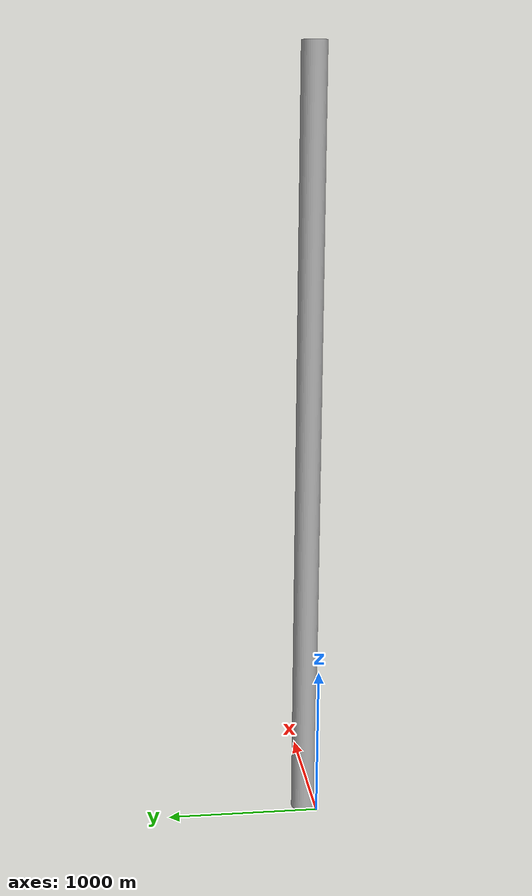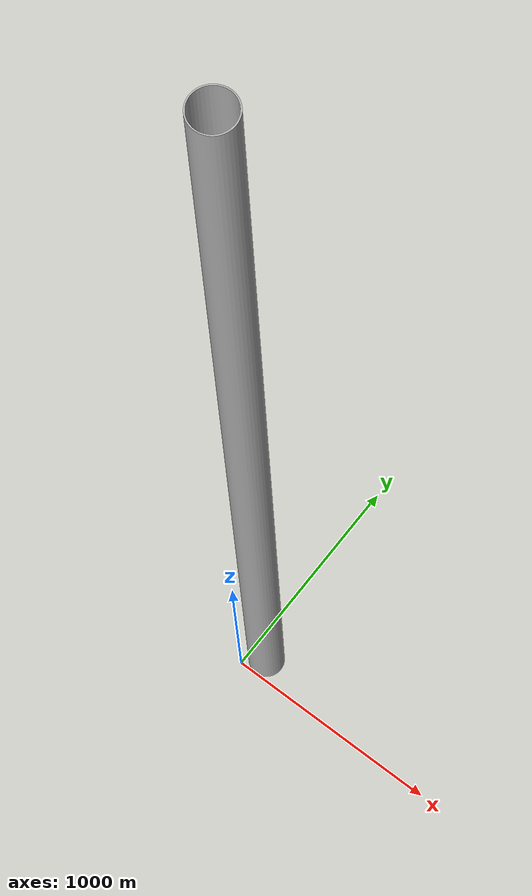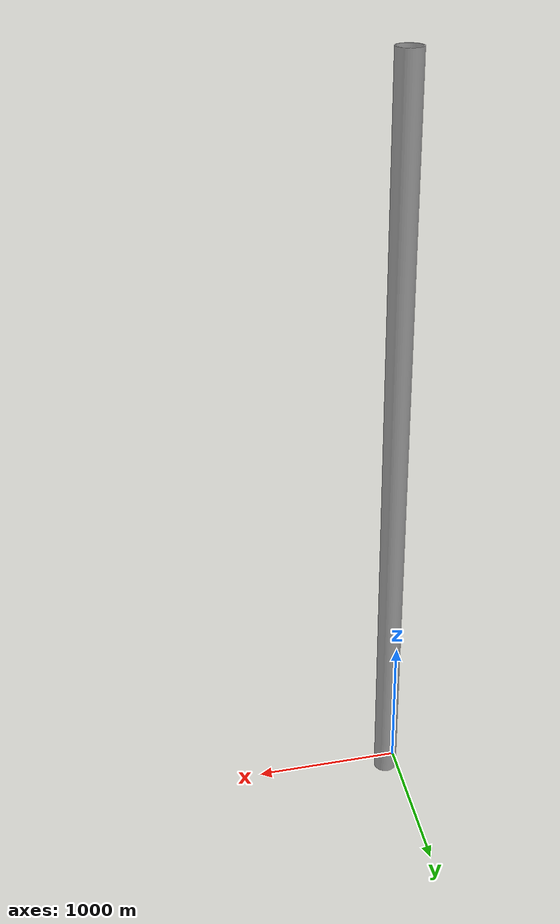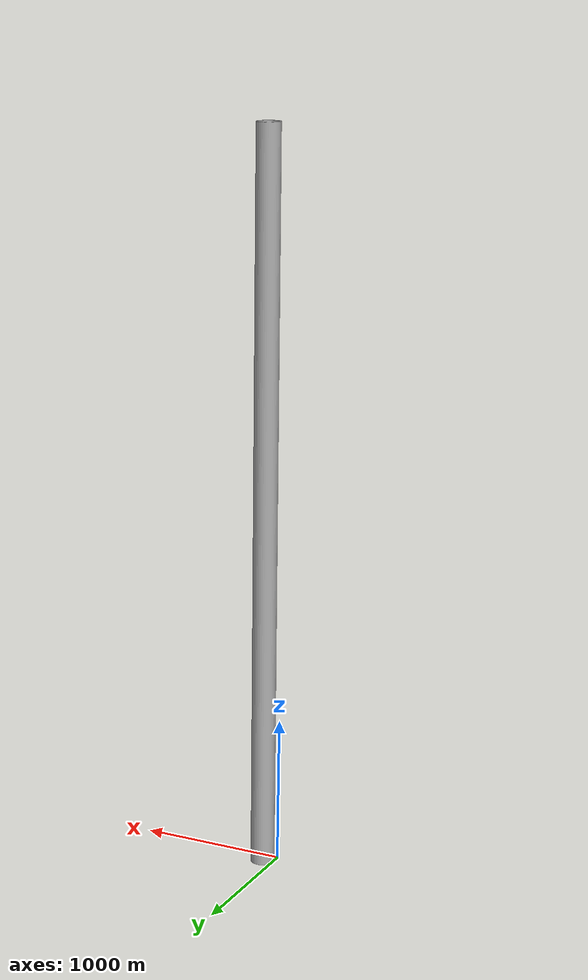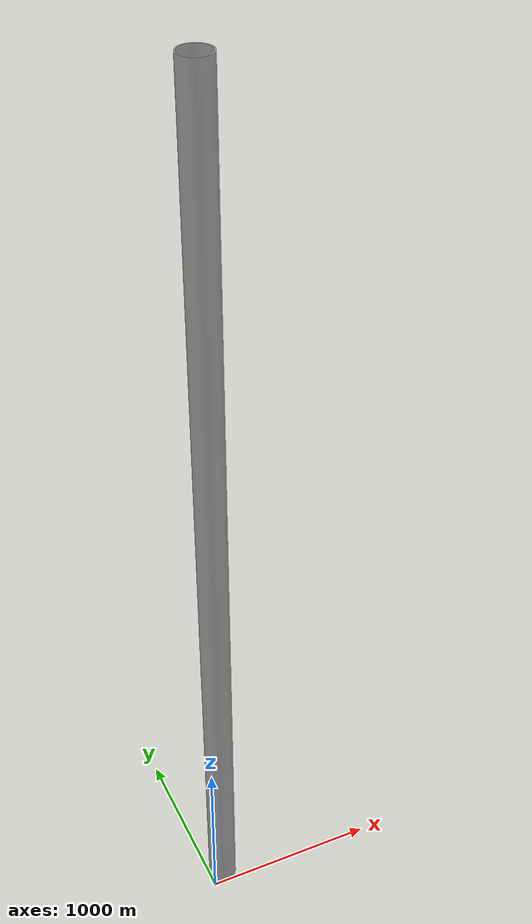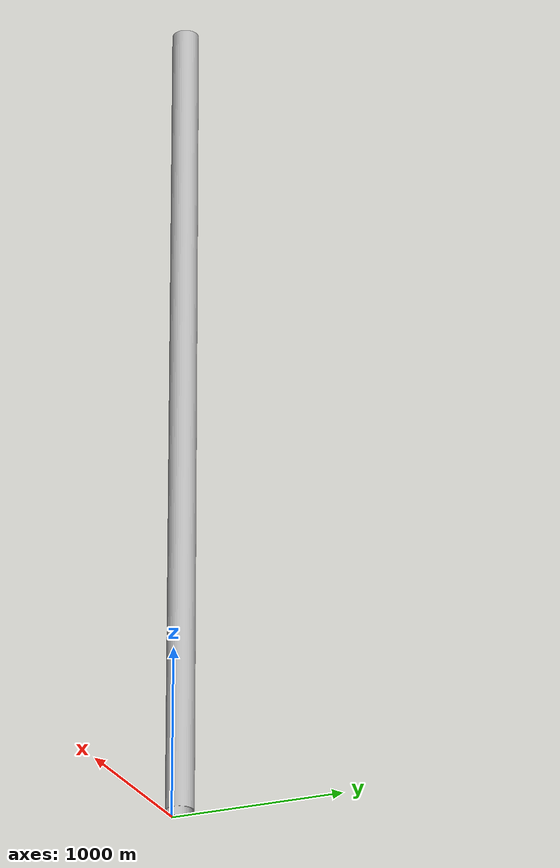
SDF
<?xml version="1.0"?>
<sdf version="1.7">
  <model name="hollow_pipe">
    <static>false</static>
    <link name="hollow_pipe_link">
      <visual name="hollow_pipe_visual">
        <geometry>
          <mesh>
            <uri>model://hollow_pipe/meshes/hollow_pipe.stl</uri>
            <scale>1 1 1</scale>
          </mesh>
        </geometry>
      </visual>

      <collision name="hollow_pipe_collision">
        <geometry>
          <mesh>
            <uri>model://hollow_pipe/meshes/hollow_pipe.stl</uri>
            <scale>1 1 1</scale>
          </mesh>
        </geometry>
      </collision>

      <inertial>
        <mass>1.0</mass>
        <inertia>
          <ixx>0.01</ixx> <iyy>0.01</iyy> <izz>0.01</izz>
          <ixy>0.0</ixy> <ixz>0.0</ixz> <iyz>0.0</iyz>
        </inertia>
      </inertial>
    </link>
  </model>
</sdf>
